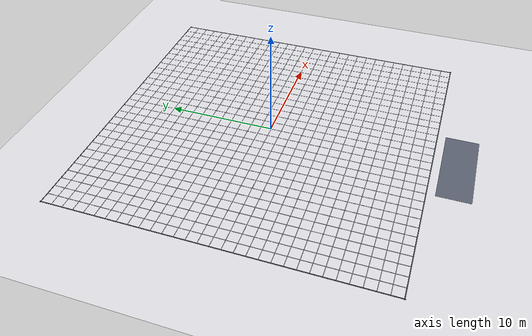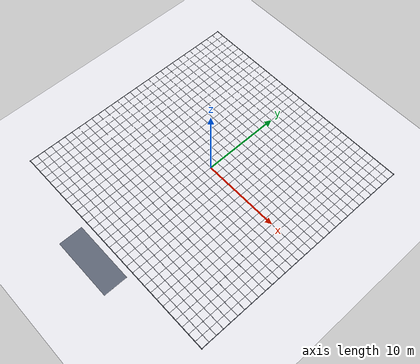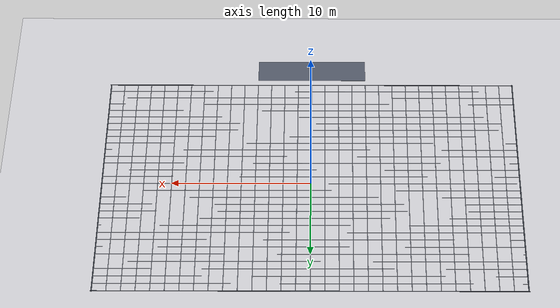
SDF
<?xml version="1.0" ?>
<sdf version="1.8">
  <world name="swarm_world">
    <!-- SPEEDUP SIMULATION: max_step_size=0.001 (1000Hz stable physics) & real_time_factor=1.0 -->
    <physics name="fast_physics" type="ode">
      <max_step_size>0.001</max_step_size>
      <real_time_factor>1.0</real_time_factor>
    </physics>

    <!-- SCENE CONFIG: Matikan default 20x20 grid internal Gazebo agar tidak tumpang-tindih -->
    <scene>
      <ambient>0.6 0.6 0.6 1.0</ambient>
      <background>0.85 0.85 0.88 1.0</background>
      <shadows>true</shadows>
      <grid>false</grid>
    </scene>

    <!-- PLUGIN INTI GAZEBO HARMONIC -->
    <plugin
      filename="gz-sim-physics-system"
      name="gz::sim::systems::Physics">
    </plugin>
    <plugin
      filename="gz-sim-user-commands-system"
      name="gz::sim::systems::UserCommands">
    </plugin>
    <plugin
      filename="gz-sim-scene-broadcaster-system"
      name="gz::sim::systems::SceneBroadcaster">
    </plugin>
    <plugin
      filename="gz-sim-sensors-system"
      name="gz::sim::systems::Sensors">
      <render_engine>ogre2</render_engine>
    </plugin>

    <!-- MATAHARI (SUN) -->
    <light type="directional" name="sun">
      <cast_shadows>true</cast_shadows>
      <pose>0 0 10 0 0 0</pose>
      <diffuse>0.8 0.8 0.8 1</diffuse>
      <specular>0.2 0.2 0.2 1</specular>
      <attenuation>
        <range>1000</range>
        <constant>0.9</constant>
        <linear>0.01</linear>
        <quadratic>0.001</quadratic>
      </attenuation>
      <direction>-0.5 0.1 -0.9</direction>
    </light>

    <!-- LANTAI (GROUND PLANE) -->
    <model name="ground_plane">
      <static>true</static>
      <link name="link">
        <collision name="collision">
          <geometry>
            <plane>
              <normal>0 0 1</normal>
              <size>100 100</size>
            </plane>
          </geometry>
        </collision>
        <visual name="visual">
          <geometry>
            <plane>
              <normal>0 0 1</normal>
              <size>100 100</size>
            </plane>
          </geometry>
          <material>
            <ambient>0.88 0.88 0.90 1.0</ambient>
            <diffuse>0.88 0.88 0.90 1.0</diffuse>
            <specular>0.3 0.3 0.3 1.0</specular>
          </material>
        </visual>
      </link>
    </model>

    <!-- GUI TOP-VIEW CAMERA PRESET (Z=38m looking down, +Y North UP, +X East RIGHT) -->
    <gui fullscreen="0">
      <camera name="user_camera">
        <pose>0.0 0.0 38.0 0.0 1.5708 1.5708</pose>
        <view_controller>orbit</view_controller>
      </camera>
    </gui>

    <!-- ARENA 30x30m GRID (1m x 1m UNIFORM SERAGAM BLOCKS, TOTAL MAPPING AREA) -->
    <model name="arena_30x30_grid">
      <static>true</static>
      <link name="grid_link">
        <visual name="grid_v_0">
          <pose>-15 0.0 0.005 0 0 0</pose>
          <geometry><box><size>0.04 30.0 0.008</size></box></geometry>
          <material>
            <ambient>0.45 0.47 0.52 1.0</ambient>
            <diffuse>0.45 0.47 0.52 1.0</diffuse>
          </material>
        </visual>
        <visual name="grid_v_1">
          <pose>-14 0.0 0.005 0 0 0</pose>
          <geometry><box><size>0.04 30.0 0.008</size></box></geometry>
          <material>
            <ambient>0.45 0.47 0.52 1.0</ambient>
            <diffuse>0.45 0.47 0.52 1.0</diffuse>
          </material>
        </visual>
        <visual name="grid_v_2">
          <pose>-13 0.0 0.005 0 0 0</pose>
          <geometry><box><size>0.04 30.0 0.008</size></box></geometry>
          <material>
            <ambient>0.45 0.47 0.52 1.0</ambient>
            <diffuse>0.45 0.47 0.52 1.0</diffuse>
          </material>
        </visual>
        <visual name="grid_v_3">
          <pose>-12 0.0 0.005 0 0 0</pose>
          <geometry><box><size>0.04 30.0 0.008</size></box></geometry>
          <material>
            <ambient>0.45 0.47 0.52 1.0</ambient>
            <diffuse>0.45 0.47 0.52 1.0</diffuse>
          </material>
        </visual>
        <visual name="grid_v_4">
          <pose>-11 0.0 0.005 0 0 0</pose>
          <geometry><box><size>0.04 30.0 0.008</size></box></geometry>
          <material>
            <ambient>0.45 0.47 0.52 1.0</ambient>
            <diffuse>0.45 0.47 0.52 1.0</diffuse>
          </material>
        </visual>
        <visual name="grid_v_5">
          <pose>-10 0.0 0.005 0 0 0</pose>
          <geometry><box><size>0.04 30.0 0.008</size></box></geometry>
          <material>
            <ambient>0.45 0.47 0.52 1.0</ambient>
            <diffuse>0.45 0.47 0.52 1.0</diffuse>
          </material>
        </visual>
        <visual name="grid_v_6">
          <pose>-9 0.0 0.005 0 0 0</pose>
          <geometry><box><size>0.04 30.0 0.008</size></box></geometry>
          <material>
            <ambient>0.45 0.47 0.52 1.0</ambient>
            <diffuse>0.45 0.47 0.52 1.0</diffuse>
          </material>
        </visual>
        <visual name="grid_v_7">
          <pose>-8 0.0 0.005 0 0 0</pose>
          <geometry><box><size>0.04 30.0 0.008</size></box></geometry>
          <material>
            <ambient>0.45 0.47 0.52 1.0</ambient>
            <diffuse>0.45 0.47 0.52 1.0</diffuse>
          </material>
        </visual>
        <visual name="grid_v_8">
          <pose>-7 0.0 0.005 0 0 0</pose>
          <geometry><box><size>0.04 30.0 0.008</size></box></geometry>
          <material>
            <ambient>0.45 0.47 0.52 1.0</ambient>
            <diffuse>0.45 0.47 0.52 1.0</diffuse>
          </material>
        </visual>
        <visual name="grid_v_9">
          <pose>-6 0.0 0.005 0 0 0</pose>
          <geometry><box><size>0.04 30.0 0.008</size></box></geometry>
          <material>
            <ambient>0.45 0.47 0.52 1.0</ambient>
            <diffuse>0.45 0.47 0.52 1.0</diffuse>
          </material>
        </visual>
        <visual name="grid_v_10">
          <pose>-5 0.0 0.005 0 0 0</pose>
          <geometry><box><size>0.04 30.0 0.008</size></box></geometry>
          <material>
            <ambient>0.45 0.47 0.52 1.0</ambient>
            <diffuse>0.45 0.47 0.52 1.0</diffuse>
          </material>
        </visual>
        <visual name="grid_v_11">
          <pose>-4 0.0 0.005 0 0 0</pose>
          <geometry><box><size>0.04 30.0 0.008</size></box></geometry>
          <material>
            <ambient>0.45 0.47 0.52 1.0</ambient>
            <diffuse>0.45 0.47 0.52 1.0</diffuse>
          </material>
        </visual>
        <visual name="grid_v_12">
          <pose>-3 0.0 0.005 0 0 0</pose>
          <geometry><box><size>0.04 30.0 0.008</size></box></geometry>
          <material>
            <ambient>0.45 0.47 0.52 1.0</ambient>
            <diffuse>0.45 0.47 0.52 1.0</diffuse>
          </material>
        </visual>
        <visual name="grid_v_13">
          <pose>-2 0.0 0.005 0 0 0</pose>
          <geometry><box><size>0.04 30.0 0.008</size></box></geometry>
          <material>
            <ambient>0.45 0.47 0.52 1.0</ambient>
            <diffuse>0.45 0.47 0.52 1.0</diffuse>
          </material>
        </visual>
        <visual name="grid_v_14">
          <pose>-1 0.0 0.005 0 0 0</pose>
          <geometry><box><size>0.04 30.0 0.008</size></box></geometry>
          <material>
            <ambient>0.45 0.47 0.52 1.0</ambient>
            <diffuse>0.45 0.47 0.52 1.0</diffuse>
          </material>
        </visual>
        <visual name="grid_v_15">
          <pose>0 0.0 0.005 0 0 0</pose>
          <geometry><box><size>0.04 30.0 0.008</size></box></geometry>
          <material>
            <ambient>0.45 0.47 0.52 1.0</ambient>
            <diffuse>0.45 0.47 0.52 1.0</diffuse>
          </material>
        </visual>
        <visual name="grid_v_16">
          <pose>1 0.0 0.005 0 0 0</pose>
          <geometry><box><size>0.04 30.0 0.008</size></box></geometry>
          <material>
            <ambient>0.45 0.47 0.52 1.0</ambient>
            <diffuse>0.45 0.47 0.52 1.0</diffuse>
          </material>
        </visual>
        <visual name="grid_v_17">
          <pose>2 0.0 0.005 0 0 0</pose>
          <geometry><box><size>0.04 30.0 0.008</size></box></geometry>
          <material>
            <ambient>0.45 0.47 0.52 1.0</ambient>
            <diffuse>0.45 0.47 0.52 1.0</diffuse>
          </material>
        </visual>
        <visual name="grid_v_18">
          <pose>3 0.0 0.005 0 0 0</pose>
          <geometry><box><size>0.04 30.0 0.008</size></box></geometry>
          <material>
            <ambient>0.45 0.47 0.52 1.0</ambient>
            <diffuse>0.45 0.47 0.52 1.0</diffuse>
          </material>
        </visual>
        <visual name="grid_v_19">
          <pose>4 0.0 0.005 0 0 0</pose>
          <geometry><box><size>0.04 30.0 0.008</size></box></geometry>
          <material>
            <ambient>0.45 0.47 0.52 1.0</ambient>
            <diffuse>0.45 0.47 0.52 1.0</diffuse>
          </material>
        </visual>
        <visual name="grid_v_20">
          <pose>5 0.0 0.005 0 0 0</pose>
          <geometry><box><size>0.04 30.0 0.008</size></box></geometry>
          <material>
            <ambient>0.45 0.47 0.52 1.0</ambient>
            <diffuse>0.45 0.47 0.52 1.0</diffuse>
          </material>
        </visual>
        <visual name="grid_v_21">
          <pose>6 0.0 0.005 0 0 0</pose>
          <geometry><box><size>0.04 30.0 0.008</size></box></geometry>
          <material>
            <ambient>0.45 0.47 0.52 1.0</ambient>
            <diffuse>0.45 0.47 0.52 1.0</diffuse>
          </material>
        </visual>
        <visual name="grid_v_22">
          <pose>7 0.0 0.005 0 0 0</pose>
          <geometry><box><size>0.04 30.0 0.008</size></box></geometry>
          <material>
            <ambient>0.45 0.47 0.52 1.0</ambient>
            <diffuse>0.45 0.47 0.52 1.0</diffuse>
          </material>
        </visual>
        <visual name="grid_v_23">
          <pose>8 0.0 0.005 0 0 0</pose>
          <geometry><box><size>0.04 30.0 0.008</size></box></geometry>
          <material>
            <ambient>0.45 0.47 0.52 1.0</ambient>
            <diffuse>0.45 0.47 0.52 1.0</diffuse>
          </material>
        </visual>
        <visual name="grid_v_24">
          <pose>9 0.0 0.005 0 0 0</pose>
          <geometry><box><size>0.04 30.0 0.008</size></box></geometry>
          <material>
            <ambient>0.45 0.47 0.52 1.0</ambient>
            <diffuse>0.45 0.47 0.52 1.0</diffuse>
          </material>
        </visual>
        <visual name="grid_v_25">
          <pose>10 0.0 0.005 0 0 0</pose>
          <geometry><box><size>0.04 30.0 0.008</size></box></geometry>
          <material>
            <ambient>0.45 0.47 0.52 1.0</ambient>
            <diffuse>0.45 0.47 0.52 1.0</diffuse>
          </material>
        </visual>
        <visual name="grid_v_26">
          <pose>11 0.0 0.005 0 0 0</pose>
          <geometry><box><size>0.04 30.0 0.008</size></box></geometry>
          <material>
            <ambient>0.45 0.47 0.52 1.0</ambient>
            <diffuse>0.45 0.47 0.52 1.0</diffuse>
          </material>
        </visual>
        <visual name="grid_v_27">
          <pose>12 0.0 0.005 0 0 0</pose>
          <geometry><box><size>0.04 30.0 0.008</size></box></geometry>
          <material>
            <ambient>0.45 0.47 0.52 1.0</ambient>
            <diffuse>0.45 0.47 0.52 1.0</diffuse>
          </material>
        </visual>
        <visual name="grid_v_28">
          <pose>13 0.0 0.005 0 0 0</pose>
          <geometry><box><size>0.04 30.0 0.008</size></box></geometry>
          <material>
            <ambient>0.45 0.47 0.52 1.0</ambient>
            <diffuse>0.45 0.47 0.52 1.0</diffuse>
          </material>
        </visual>
        <visual name="grid_v_29">
          <pose>14 0.0 0.005 0 0 0</pose>
          <geometry><box><size>0.04 30.0 0.008</size></box></geometry>
          <material>
            <ambient>0.45 0.47 0.52 1.0</ambient>
            <diffuse>0.45 0.47 0.52 1.0</diffuse>
          </material>
        </visual>
        <visual name="grid_v_30">
          <pose>15 0.0 0.005 0 0 0</pose>
          <geometry><box><size>0.04 30.0 0.008</size></box></geometry>
          <material>
            <ambient>0.45 0.47 0.52 1.0</ambient>
            <diffuse>0.45 0.47 0.52 1.0</diffuse>
          </material>
        </visual>
        <visual name="grid_h_0">
          <pose>0.0 -15 0.005 0 0 0</pose>
          <geometry><box><size>30.0 0.04 0.008</size></box></geometry>
          <material>
            <ambient>0.45 0.47 0.52 1.0</ambient>
            <diffuse>0.45 0.47 0.52 1.0</diffuse>
          </material>
        </visual>
        <visual name="grid_h_1">
          <pose>0.0 -14 0.005 0 0 0</pose>
          <geometry><box><size>30.0 0.04 0.008</size></box></geometry>
          <material>
            <ambient>0.45 0.47 0.52 1.0</ambient>
            <diffuse>0.45 0.47 0.52 1.0</diffuse>
          </material>
        </visual>
        <visual name="grid_h_2">
          <pose>0.0 -13 0.005 0 0 0</pose>
          <geometry><box><size>30.0 0.04 0.008</size></box></geometry>
          <material>
            <ambient>0.45 0.47 0.52 1.0</ambient>
            <diffuse>0.45 0.47 0.52 1.0</diffuse>
          </material>
        </visual>
        <visual name="grid_h_3">
          <pose>0.0 -12 0.005 0 0 0</pose>
          <geometry><box><size>30.0 0.04 0.008</size></box></geometry>
          <material>
            <ambient>0.45 0.47 0.52 1.0</ambient>
            <diffuse>0.45 0.47 0.52 1.0</diffuse>
          </material>
        </visual>
        <visual name="grid_h_4">
          <pose>0.0 -11 0.005 0 0 0</pose>
          <geometry><box><size>30.0 0.04 0.008</size></box></geometry>
          <material>
            <ambient>0.45 0.47 0.52 1.0</ambient>
            <diffuse>0.45 0.47 0.52 1.0</diffuse>
          </material>
        </visual>
        <visual name="grid_h_5">
          <pose>0.0 -10 0.005 0 0 0</pose>
          <geometry><box><size>30.0 0.04 0.008</size></box></geometry>
          <material>
            <ambient>0.45 0.47 0.52 1.0</ambient>
            <diffuse>0.45 0.47 0.52 1.0</diffuse>
          </material>
        </visual>
        <visual name="grid_h_6">
          <pose>0.0 -9 0.005 0 0 0</pose>
          <geometry><box><size>30.0 0.04 0.008</size></box></geometry>
          <material>
            <ambient>0.45 0.47 0.52 1.0</ambient>
            <diffuse>0.45 0.47 0.52 1.0</diffuse>
          </material>
        </visual>
        <visual name="grid_h_7">
          <pose>0.0 -8 0.005 0 0 0</pose>
          <geometry><box><size>30.0 0.04 0.008</size></box></geometry>
          <material>
            <ambient>0.45 0.47 0.52 1.0</ambient>
            <diffuse>0.45 0.47 0.52 1.0</diffuse>
          </material>
        </visual>
        <visual name="grid_h_8">
          <pose>0.0 -7 0.005 0 0 0</pose>
          <geometry><box><size>30.0 0.04 0.008</size></box></geometry>
          <material>
            <ambient>0.45 0.47 0.52 1.0</ambient>
            <diffuse>0.45 0.47 0.52 1.0</diffuse>
          </material>
        </visual>
        <visual name="grid_h_9">
          <pose>0.0 -6 0.005 0 0 0</pose>
          <geometry><box><size>30.0 0.04 0.008</size></box></geometry>
          <material>
            <ambient>0.45 0.47 0.52 1.0</ambient>
            <diffuse>0.45 0.47 0.52 1.0</diffuse>
          </material>
        </visual>
        <visual name="grid_h_10">
          <pose>0.0 -5 0.005 0 0 0</pose>
          <geometry><box><size>30.0 0.04 0.008</size></box></geometry>
          <material>
            <ambient>0.45 0.47 0.52 1.0</ambient>
            <diffuse>0.45 0.47 0.52 1.0</diffuse>
          </material>
        </visual>
        <visual name="grid_h_11">
          <pose>0.0 -4 0.005 0 0 0</pose>
          <geometry><box><size>30.0 0.04 0.008</size></box></geometry>
          <material>
            <ambient>0.45 0.47 0.52 1.0</ambient>
            <diffuse>0.45 0.47 0.52 1.0</diffuse>
          </material>
        </visual>
        <visual name="grid_h_12">
          <pose>0.0 -3 0.005 0 0 0</pose>
          <geometry><box><size>30.0 0.04 0.008</size></box></geometry>
          <material>
            <ambient>0.45 0.47 0.52 1.0</ambient>
            <diffuse>0.45 0.47 0.52 1.0</diffuse>
          </material>
        </visual>
        <visual name="grid_h_13">
          <pose>0.0 -2 0.005 0 0 0</pose>
          <geometry><box><size>30.0 0.04 0.008</size></box></geometry>
          <material>
            <ambient>0.45 0.47 0.52 1.0</ambient>
            <diffuse>0.45 0.47 0.52 1.0</diffuse>
          </material>
        </visual>
        <visual name="grid_h_14">
          <pose>0.0 -1 0.005 0 0 0</pose>
          <geometry><box><size>30.0 0.04 0.008</size></box></geometry>
          <material>
            <ambient>0.45 0.47 0.52 1.0</ambient>
            <diffuse>0.45 0.47 0.52 1.0</diffuse>
          </material>
        </visual>
        <visual name="grid_h_15">
          <pose>0.0 0 0.005 0 0 0</pose>
          <geometry><box><size>30.0 0.04 0.008</size></box></geometry>
          <material>
            <ambient>0.45 0.47 0.52 1.0</ambient>
            <diffuse>0.45 0.47 0.52 1.0</diffuse>
          </material>
        </visual>
        <visual name="grid_h_16">
          <pose>0.0 1 0.005 0 0 0</pose>
          <geometry><box><size>30.0 0.04 0.008</size></box></geometry>
          <material>
            <ambient>0.45 0.47 0.52 1.0</ambient>
            <diffuse>0.45 0.47 0.52 1.0</diffuse>
          </material>
        </visual>
        <visual name="grid_h_17">
          <pose>0.0 2 0.005 0 0 0</pose>
          <geometry><box><size>30.0 0.04 0.008</size></box></geometry>
          <material>
            <ambient>0.45 0.47 0.52 1.0</ambient>
            <diffuse>0.45 0.47 0.52 1.0</diffuse>
          </material>
        </visual>
        <visual name="grid_h_18">
          <pose>0.0 3 0.005 0 0 0</pose>
          <geometry><box><size>30.0 0.04 0.008</size></box></geometry>
          <material>
            <ambient>0.45 0.47 0.52 1.0</ambient>
            <diffuse>0.45 0.47 0.52 1.0</diffuse>
          </material>
        </visual>
        <visual name="grid_h_19">
          <pose>0.0 4 0.005 0 0 0</pose>
          <geometry><box><size>30.0 0.04 0.008</size></box></geometry>
          <material>
            <ambient>0.45 0.47 0.52 1.0</ambient>
            <diffuse>0.45 0.47 0.52 1.0</diffuse>
          </material>
        </visual>
        <visual name="grid_h_20">
          <pose>0.0 5 0.005 0 0 0</pose>
          <geometry><box><size>30.0 0.04 0.008</size></box></geometry>
          <material>
            <ambient>0.45 0.47 0.52 1.0</ambient>
            <diffuse>0.45 0.47 0.52 1.0</diffuse>
          </material>
        </visual>
        <visual name="grid_h_21">
          <pose>0.0 6 0.005 0 0 0</pose>
          <geometry><box><size>30.0 0.04 0.008</size></box></geometry>
          <material>
            <ambient>0.45 0.47 0.52 1.0</ambient>
            <diffuse>0.45 0.47 0.52 1.0</diffuse>
          </material>
        </visual>
        <visual name="grid_h_22">
          <pose>0.0 7 0.005 0 0 0</pose>
          <geometry><box><size>30.0 0.04 0.008</size></box></geometry>
          <material>
            <ambient>0.45 0.47 0.52 1.0</ambient>
            <diffuse>0.45 0.47 0.52 1.0</diffuse>
          </material>
        </visual>
        <visual name="grid_h_23">
          <pose>0.0 8 0.005 0 0 0</pose>
          <geometry><box><size>30.0 0.04 0.008</size></box></geometry>
          <material>
            <ambient>0.45 0.47 0.52 1.0</ambient>
            <diffuse>0.45 0.47 0.52 1.0</diffuse>
          </material>
        </visual>
        <visual name="grid_h_24">
          <pose>0.0 9 0.005 0 0 0</pose>
          <geometry><box><size>30.0 0.04 0.008</size></box></geometry>
          <material>
            <ambient>0.45 0.47 0.52 1.0</ambient>
            <diffuse>0.45 0.47 0.52 1.0</diffuse>
          </material>
        </visual>
        <visual name="grid_h_25">
          <pose>0.0 10 0.005 0 0 0</pose>
          <geometry><box><size>30.0 0.04 0.008</size></box></geometry>
          <material>
            <ambient>0.45 0.47 0.52 1.0</ambient>
            <diffuse>0.45 0.47 0.52 1.0</diffuse>
          </material>
        </visual>
        <visual name="grid_h_26">
          <pose>0.0 11 0.005 0 0 0</pose>
          <geometry><box><size>30.0 0.04 0.008</size></box></geometry>
          <material>
            <ambient>0.45 0.47 0.52 1.0</ambient>
            <diffuse>0.45 0.47 0.52 1.0</diffuse>
          </material>
        </visual>
        <visual name="grid_h_27">
          <pose>0.0 12 0.005 0 0 0</pose>
          <geometry><box><size>30.0 0.04 0.008</size></box></geometry>
          <material>
            <ambient>0.45 0.47 0.52 1.0</ambient>
            <diffuse>0.45 0.47 0.52 1.0</diffuse>
          </material>
        </visual>
        <visual name="grid_h_28">
          <pose>0.0 13 0.005 0 0 0</pose>
          <geometry><box><size>30.0 0.04 0.008</size></box></geometry>
          <material>
            <ambient>0.45 0.47 0.52 1.0</ambient>
            <diffuse>0.45 0.47 0.52 1.0</diffuse>
          </material>
        </visual>
        <visual name="grid_h_29">
          <pose>0.0 14 0.005 0 0 0</pose>
          <geometry><box><size>30.0 0.04 0.008</size></box></geometry>
          <material>
            <ambient>0.45 0.47 0.52 1.0</ambient>
            <diffuse>0.45 0.47 0.52 1.0</diffuse>
          </material>
        </visual>
        <visual name="grid_h_30">
          <pose>0.0 15 0.005 0 0 0</pose>
          <geometry><box><size>30.0 0.04 0.008</size></box></geometry>
          <material>
            <ambient>0.45 0.47 0.52 1.0</ambient>
            <diffuse>0.45 0.47 0.52 1.0</diffuse>
          </material>
        </visual>
        <!-- BORDER PERIMETER ARENA 30x30m -->
        <visual name="border_north">
          <pose>0.0 15.0 0.008 0 0 0</pose>
          <geometry><box><size>30.16 0.08 0.012</size></box></geometry>
          <material>
            <ambient>0.20 0.22 0.26 1.0</ambient>
            <diffuse>0.20 0.22 0.26 1.0</diffuse>
          </material>
        </visual>
        <visual name="border_south">
          <pose>0.0 -15.0 0.008 0 0 0</pose>
          <geometry><box><size>30.16 0.08 0.012</size></box></geometry>
          <material>
            <ambient>0.20 0.22 0.26 1.0</ambient>
            <diffuse>0.20 0.22 0.26 1.0</diffuse>
          </material>
        </visual>
        <visual name="border_east">
          <pose>15.0 0.0 0.008 0 0 0</pose>
          <geometry><box><size>0.08 30.16 0.012</size></box></geometry>
          <material>
            <ambient>0.20 0.22 0.26 1.0</ambient>
            <diffuse>0.20 0.22 0.26 1.0</diffuse>
          </material>
        </visual>
        <visual name="border_west">
          <pose>-15.0 0.0 0.008 0 0 0</pose>
          <geometry><box><size>0.08 30.16 0.012</size></box></geometry>
          <material>
            <ambient>0.20 0.22 0.26 1.0</ambient>
            <diffuse>0.20 0.22 0.26 1.0</diffuse>
          </material>
        </visual>

        <!-- STAGING BASE PAD DI LUAR ARENA SELATAN (Y = -17.25m) -->
        <visual name="staging_pad_visual">
          <pose>0.0 -17.25 0.003 0 0 0</pose>
          <geometry><box><size>8.0 3.0 0.005</size></box></geometry>
          <material>
            <ambient>0.35 0.38 0.44 0.9</ambient>
            <diffuse>0.35 0.38 0.44 0.9</diffuse>
          </material>
        </visual>
      </link>
    </model>
  </world>
</sdf>
